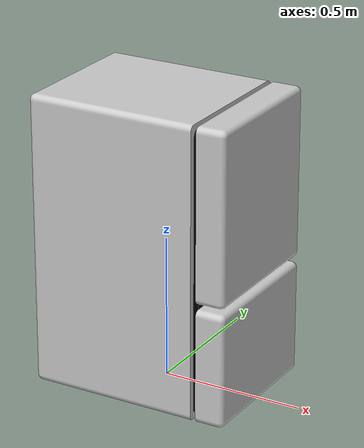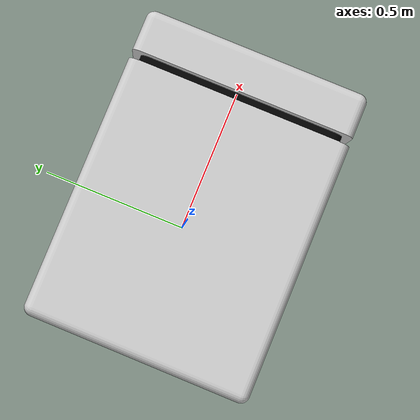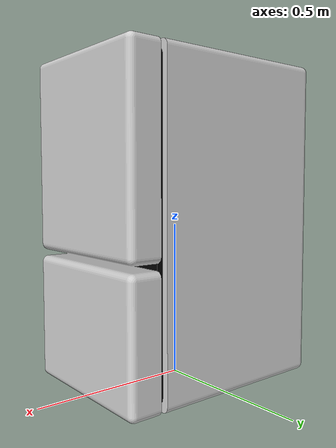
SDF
<?xml version="1.0" ?>

<sdf version="1.5">
  <model name="rgiro_generic_refrigerator">
    <static>1</static>
    <link name="link">
      <visual name="visual">
        <geometry>
          <mesh>
            <uri>model://rgiro_generic_refrigerator/meshes/rgiro_generic_refrigerator.dae</uri>
          </mesh>
        </geometry>
      </visual>
      <collision name="collision">
        <geometry>
          <mesh>
            <uri>model://rgiro_generic_refrigerator/meshes/rgiro_generic_refrigerator.dae</uri>
          </mesh>
        </geometry>
      </collision>
    </link>
  </model>
</sdf>
